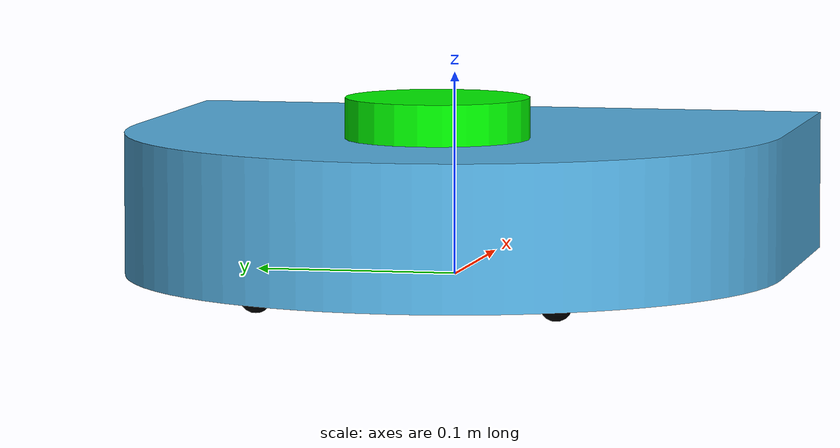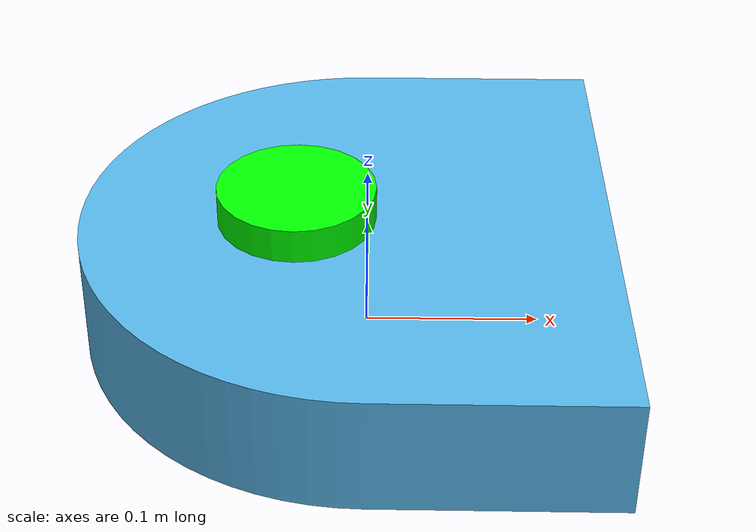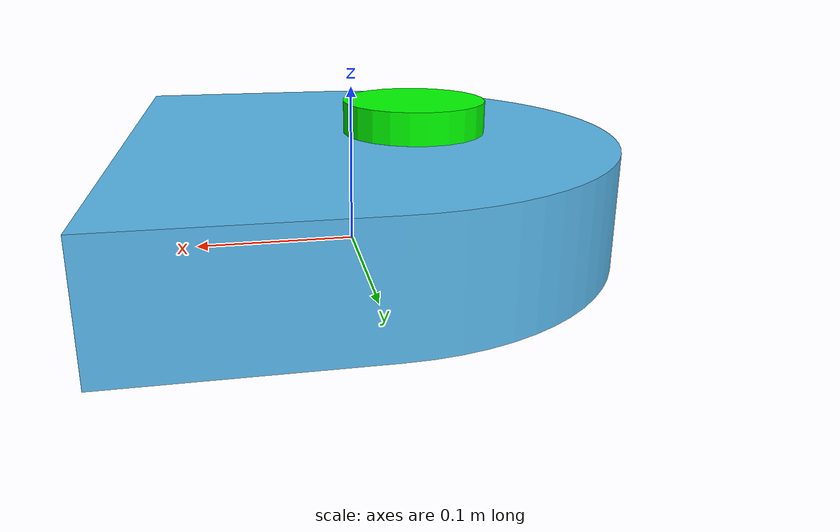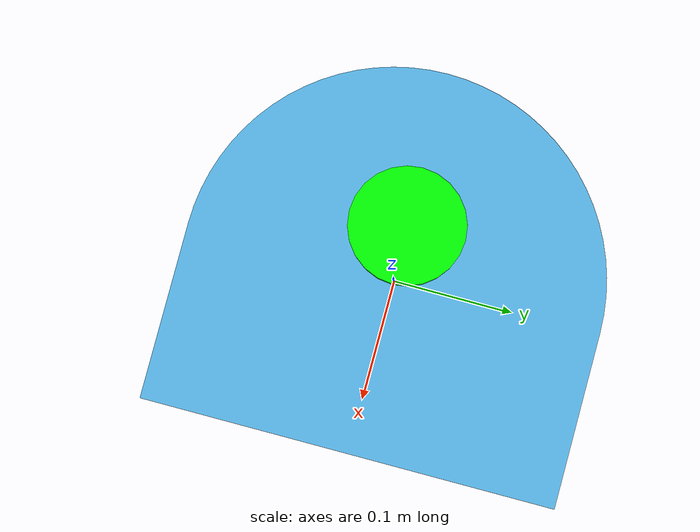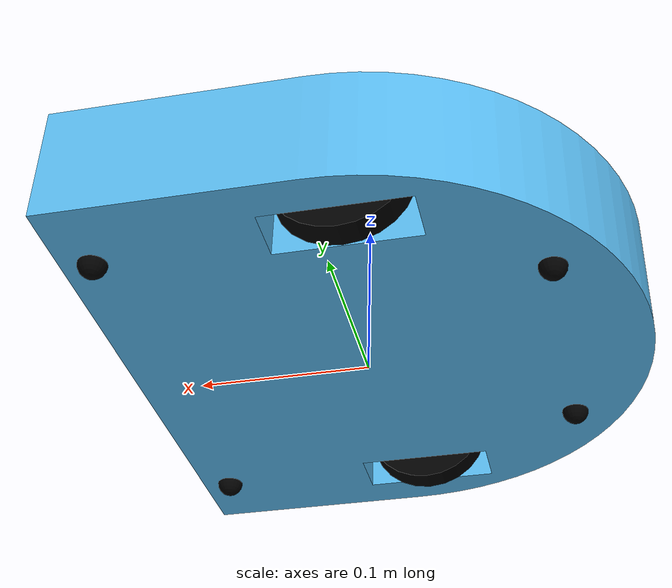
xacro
<?xml version="1.0"?>
<robot name="moon" xmlns:xacro="http://ros.org/wiki/xacro">

  <!-- Included files -->
  <xacro:include filename="$(find moon_description)/urdf/materials.urdf.xacro"/>
  <xacro:include filename="$(find moon_description)/urdf/common.urdf.xacro"/>
  <xacro:include filename="$(find moon_description)/urdf/wheels.urdf.xacro"/>

  <!-- Robot properties -->
  <xacro:property name="base_width" value="0.325"/>
  <xacro:property name="base_length" value="0.3"/>
  <xacro:property name="base_height" value="0.07"/>

  <xacro:property name="caster_radius" value="0.008"/>

  <xacro:property name="wheel_width" value="0.015"/>
  <xacro:property name="wheel_radius" value="0.0375"/>

  <xacro:property name="wheel_holder_size" value="0.01"/>

  <xacro:property name="lidar_height" value="0.02"/>
  <xacro:property name="lidar_radius" value="0.045"/>

  <link name="base_footprint"/>

  <joint name="base_footprint_joint" type="fixed">
    <origin rpy="0 0 0" xyz="0 0 0.001"/>
    <parent link="base_footprint"/>
    <child link="base_link"/>
  </joint>

  <link name="base_link">
    <visual>
      <origin xyz="0 0 0" rpy="0 0 0"/>
      <geometry>
        <mesh filename="package://moon_description/meshes/moon_base.stl"/>
      </geometry>
      <xacro:navajo_white_material/>
    </visual>
  </link>

  <link name="base_link_inertia">
    <xacro:box_collision width="${base_length + 0.05}" depth="${base_height}" height="${base_width + 0.05}"/>
    <xacro:box_inertia mass="3.0" width="${base_length}" depth="${base_height}" height="${base_width}"/>
  </link>

  <joint name="base_link_inertia_joint" type="fixed">
    <origin xyz="0 0 ${base_height / 2}" rpy="0 0 0"/>
    <parent link="base_link"/>
    <child link="base_link_inertia"/>
  </joint>

  <xacro:caster_wheel prefix="front_left" radius="${caster_radius}" x="0.12" y="0.12" z="0"/>
  <xacro:caster_wheel prefix="front_right" radius="${caster_radius}" x="0.12" y="-0.12" z="0"/>

  <xacro:transmission_wheel prefix="back_left" radius="${wheel_radius}" width="${wheel_width}"
                            holder_size="${wheel_holder_size}" direction="1.0" x="-0.0125" y="0.14"
                            z="${wheel_radius - caster_radius}"/>
  <xacro:transmission_wheel prefix="back_right" radius="${wheel_radius}" width="${wheel_width}"
                            holder_size="${wheel_holder_size}" direction="-1.0" x="-0.0125" y="-0.14"
                            z="${wheel_radius - caster_radius}"/>

  <xacro:caster_wheel prefix="back_left" radius="${caster_radius - 0.0001}" x="-0.1125" y="0.0725" z="0"/>
  <xacro:caster_wheel prefix="back_right" radius="${caster_radius - 0.0001}" x="-0.1125" y="-0.0725" z="0"/>

  <link name="lidar">
    <visual>
      <xacro:cylinder_geometry radius="${lidar_radius}" height="${lidar_height}"/>
      <xacro:green_material/>
    </visual>
    <xacro:cylinder_collision radius="${lidar_radius}" height="${lidar_height}"/>
    <xacro:cylinder_inertia mass="0.1" radius="${lidar_radius}" height="${lidar_height}"/>
    <dynamics damping="0.01" friction="100.0"/>
  </link>

  <joint name="lidar_joint" type="fixed">
    <origin rpy="0 0 0" xyz="-0.04 0 ${base_height + lidar_height/2}"/>
    <parent link="base_link"/>
    <child link="lidar"/>
  </joint>

</robot>

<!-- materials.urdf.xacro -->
<robot xmlns:xacro="http://ros.org/wiki/xacro">

  <xacro:macro name="white_material">
    <material name="white">
      <color rgba="255 255 255 1"/>
    </material>
  </xacro:macro>

  <xacro:macro name="black_material">
    <material name="black">
      <color rgba="0 0 0 1"/>
    </material>
  </xacro:macro>

  <xacro:macro name="red_material">
    <material name="red">
      <color rgba="255 0 0 1"/>
    </material>
  </xacro:macro>

  <xacro:macro name="green_material">
    <material name="green">
      <color rgba="0 255 0 1"/>
    </material>
  </xacro:macro>

</robot>

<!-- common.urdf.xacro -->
<robot xmlns:xacro="http://ros.org/wiki/xacro">

  <xacro:macro name="sphere_inertia" params="mass radius">

    <inertial>
      <mass value="${mass}"/>
      <origin xyz="0 0 0"/>

      <inertia ixx="${2*mass*radius*radius/5}" ixy="0.0" ixz="0.0"
               iyy="${2*mass*radius*radius/5}" iyz="0.0"
               izz="${2*mass*radius*radius/5}"/>
    </inertial>

  </xacro:macro>

  <xacro:macro name="sphere_geometry" params="radius">
    <geometry>
      <sphere radius="${radius}"/>
    </geometry>
  </xacro:macro>

  <xacro:macro name="sphere_collision" params="radius">
    <collision>
      <xacro:sphere_geometry radius="${radius}"/>
    </collision>
  </xacro:macro>

  <xacro:macro name="cylinder_inertia" params="mass radius height">

    <inertial>
      <mass value="${mass}"/>
      <origin xyz="0 0 0"/>

      <inertia ixx="${(3*radius*radius + height*height)*mass/12}" ixy="0.0" ixz="0.0"
               iyy="${(3*radius*radius + height*height)*mass/12}" iyz="0.0"
               izz="${radius*radius*mass/2}"/>
    </inertial>

  </xacro:macro>

  <xacro:macro name="cylinder_geometry" params="radius height">
    <geometry>
      <cylinder length="${height}" radius="${radius}"/>
    </geometry>
  </xacro:macro>

  <xacro:macro name="cylinder_collision" params="radius height">
    <collision>
      <xacro:cylinder_geometry radius="${radius}" height="${height}"/>
    </collision>
  </xacro:macro>

  <xacro:macro name="box_inertia" params="mass width height depth">

    <inertial>
      <mass value="${mass}"/>
      <origin xyz="0 0 0"/>

      <inertia ixx="${(depth*depth + height*height)*mass/12}" ixy="0.0" ixz="0.0"
               iyy="${(depth*depth + width*width)*mass/12}" iyz="0.0"
               izz="${(width*width + height*height)*mass/12}"/>
    </inertial>

  </xacro:macro>

  <xacro:macro name="box_geometry" params="width height depth">
    <geometry>
      <box size="${width} ${height} ${depth}"/>
    </geometry>
  </xacro:macro>

  <xacro:macro name="box_collision" params="width height depth">
    <collision>
      <xacro:box_geometry width="${width}" height="${height}" depth="${depth}"/>
    </collision>
  </xacro:macro>

</robot>

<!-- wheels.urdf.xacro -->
<robot xmlns:xacro="http://ros.org/wiki/xacro">

  <xacro:macro name="caster_wheel" params="prefix radius x y z">

    <link name="caster_${prefix}_wheel">
      <visual>
        <xacro:sphere_geometry radius="${radius}"/>
        <xacro:black_material/>
      </visual>
      <xacro:sphere_collision radius="${radius}"/>
      <xacro:sphere_inertia mass="0.05" radius="${radius}"/>
    </link>

    <joint name="caster_${prefix}_joint" type="fixed">
      <parent link="base_link"/>
      <child link="caster_${prefix}_wheel"/>
      <origin rpy="0 0 0" xyz="${x} ${y} ${z}"/>
    </joint>

  </xacro:macro>

  <xacro:macro name="transmission_wheel" params="prefix radius width holder_size direction x y z">

    <link name="${prefix}_wheel_holder">
      <visual>
        <xacro:box_geometry width="${holder_size}" height="${holder_size}" depth="${holder_size}"/>
        <xacro:green_material/>
      </visual>
      <xacro:box_collision width="${holder_size}" height="${holder_size}" depth="${holder_size}"/>
      <xacro:box_inertia mass="0.003" width="${holder_size}" height="${holder_size}" depth="${holder_size}"/>
    </link>

    <joint name="base_to_${prefix}_wheel_holder" type="fixed">
      <parent link="base_link"/>
      <child link="${prefix}_wheel_holder"/>
      <origin xyz="${x} ${y} ${z}" rpy="0 0 ${pi / 2}"/>
      <axis xyz="0 0 1"/>
    </joint>

    <link name="${prefix}_wheel">
      <visual>
        <xacro:cylinder_geometry radius="${radius}" height="${width}"/>
        <xacro:black_material/>
      </visual>
      <xacro:cylinder_collision radius="${radius}" height="${width}"/>
      <xacro:cylinder_inertia mass="5" radius="${radius}" height="${width}"/>
    </link>

    <joint name="${prefix}_wheel_joint" type="continuous">
      <parent link="${prefix}_wheel_holder"/>
      <child link="${prefix}_wheel"/>
      <origin xyz="${-direction * (width + holder_size) / 2} 0 0" rpy="0 ${pi/2} 0"/>
      <axis xyz="0 0 1"/>
    </joint>

    <transmission name="${prefix}_wheel_transmission">
      <type>transmission_interface/SimpleTransmission</type>
      <joint name="${prefix}_wheel_joint">
        <hardwareInterface>hardware_interface/VelocityJointInterface</hardwareInterface>
      </joint>
      <actuator name="${prefix}_wheel_motor">
        <hardwareInterface>hardware_interface/VelocityJointInterface</hardwareInterface>
        <mechanicalReduction>1</mechanicalReduction>
      </actuator>
    </transmission>

  </xacro:macro>

</robot>
